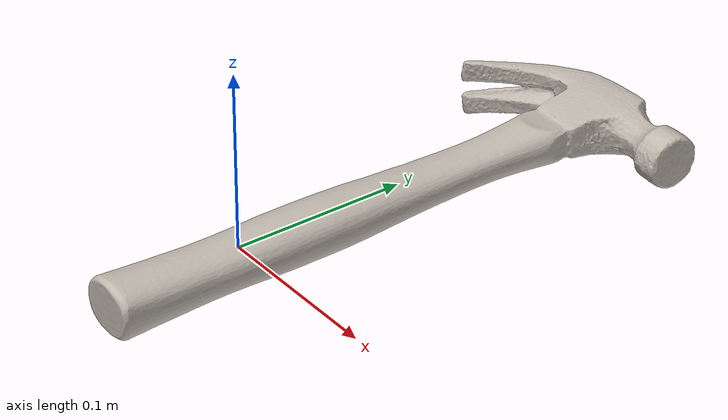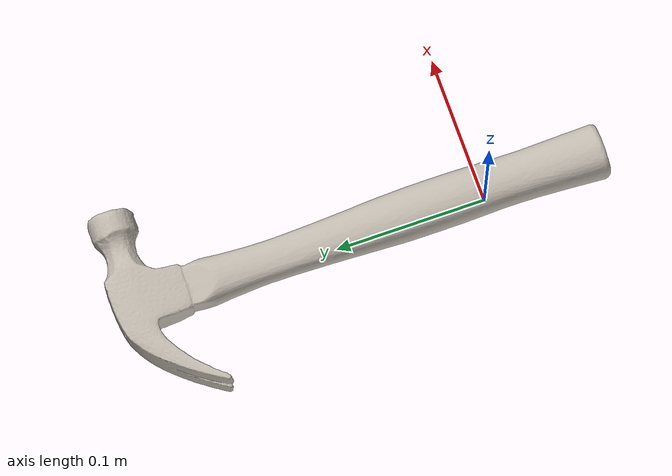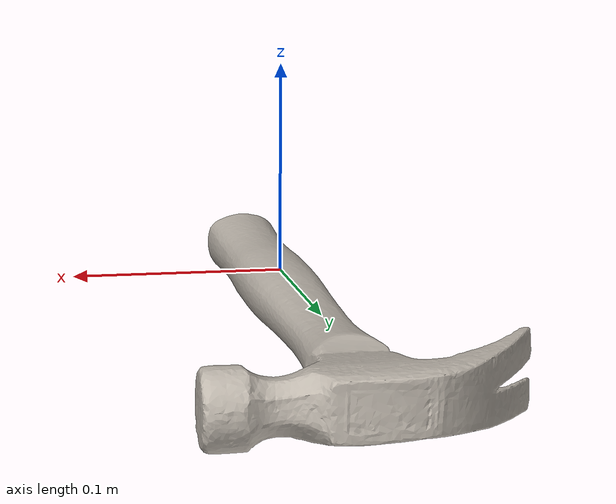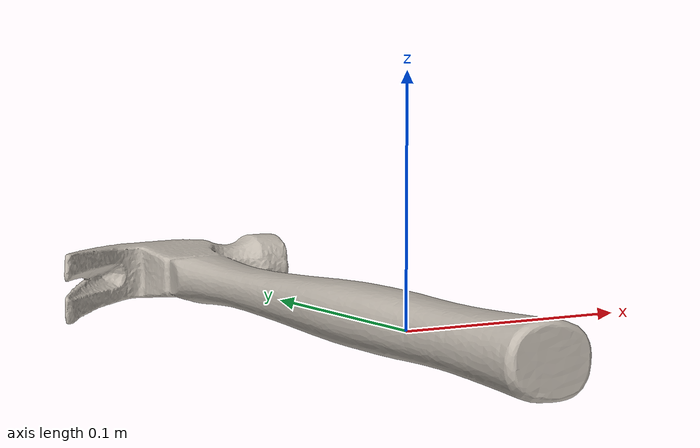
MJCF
<mujoco model="ycb_048_hammer_grasp_offset">
  <compiler meshdir="meshes" texturedir="meshes" angle="radian"/>
  <default>
    <default class="visual"><geom contype="0" conaffinity="0" group="2" density="0"/></default>
    <default class="collision"><geom group="3"/></default>
  </default>
  <asset>
    <texture name="ycb_048_hammer_grasp_offset_tex" type="2d" file="ycb_048_hammer_grasp_offset_texture.png"/>
    <material name="ycb_048_hammer_grasp_offset_mat" texture="ycb_048_hammer_grasp_offset_tex" specular="0.2" shininess="0.3"/>
    <mesh name="ycb_048_hammer_grasp_offset_visual" file="ycb_048_hammer_grasp_offset_visual.obj"/>
    <mesh name="ycb_048_hammer_grasp_offset_hull0" file="ycb_048_hammer_grasp_offset_hull0.obj"/>
    <mesh name="ycb_048_hammer_grasp_offset_hull1" file="ycb_048_hammer_grasp_offset_hull1.obj"/>
    <mesh name="ycb_048_hammer_grasp_offset_hull2" file="ycb_048_hammer_grasp_offset_hull2.obj"/>
    <mesh name="ycb_048_hammer_grasp_offset_hull3" file="ycb_048_hammer_grasp_offset_hull3.obj"/>
    <mesh name="ycb_048_hammer_grasp_offset_hull4" file="ycb_048_hammer_grasp_offset_hull4.obj"/>
  </asset>
  <worldbody>
    <body name="object" pos="0 0 0">
      <freejoint name="object_free"/>
      <geom type="mesh" mesh="ycb_048_hammer_grasp_offset_visual" material="ycb_048_hammer_grasp_offset_mat" class="visual"/>
      <geom type="mesh" mesh="ycb_048_hammer_grasp_offset_hull0" class="collision"/>
      <geom type="mesh" mesh="ycb_048_hammer_grasp_offset_hull1" class="collision"/>
      <geom type="mesh" mesh="ycb_048_hammer_grasp_offset_hull2" class="collision"/>
      <geom type="mesh" mesh="ycb_048_hammer_grasp_offset_hull3" class="collision"/>
      <geom type="mesh" mesh="ycb_048_hammer_grasp_offset_hull4" class="collision"/>
    </body>
  </worldbody>
</mujoco>
